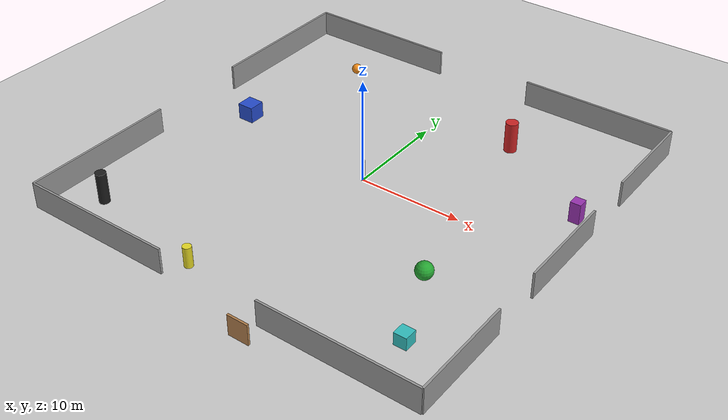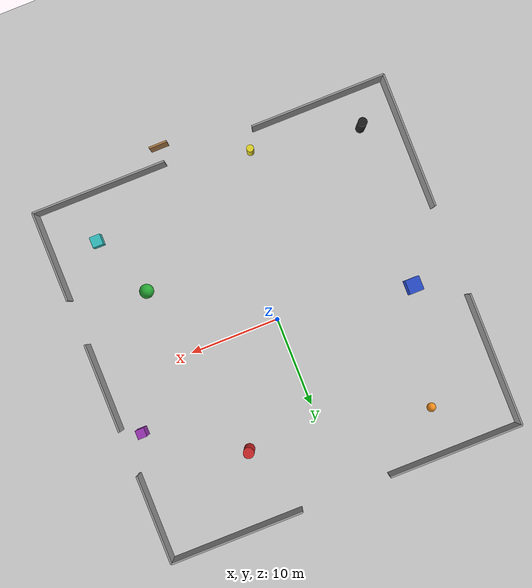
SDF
<?xml version="1.0" ?>
<sdf version="1.7">
  <world name="semi_open_space_world">

    <include><uri>model://sun</uri></include>
    <include><uri>model://ground_plane</uri></include>

    <!-- BỨC TƯỜNG BAO BỊ ĐỨT ĐOẠN (KHU VỰC 40x40m)    -->
    <model name="broken_walls">
      <static>true</static>
      <link name="walls">

        <!-- TƯỜNG BẮC (Y = 20): Thủng một mảng lớn 10m ở giữa -->
        <collision name="n_wall_1"><pose>-12.5 20 1.25 0 0 0</pose><geometry><box><size>15 0.2 2.5</size></box></geometry></collision>
        <visual name="n_wall_1_v"><pose>-12.5 20 1.25 0 0 0</pose><geometry><box><size>15 0.2 2.5</size></box></geometry><material><script><uri>file://media/materials/scripts/gazebo.material</uri><name>Gazebo/Grey</name></script></material></visual>

        <collision name="n_wall_2"><pose>12.5 20 1.25 0 0 0</pose><geometry><box><size>15 0.2 2.5</size></box></geometry></collision>
        <visual name="n_wall_2_v"><pose>12.5 20 1.25 0 0 0</pose><geometry><box><size>15 0.2 2.5</size></box></geometry><material><script><uri>file://media/materials/scripts/gazebo.material</uri><name>Gazebo/Grey</name></script></material></visual>

        <!-- TƯỜNG NAM (Y = -20): Thủng một mảng 10m ở giữa -->
        <collision name="s_wall_1"><pose>-12.5 -20 1.25 0 0 0</pose><geometry><box><size>15 0.2 2.5</size></box></geometry></collision>
        <visual name="s_wall_1_v"><pose>-12.5 -20 1.25 0 0 0</pose><geometry><box><size>15 0.2 2.5</size></box></geometry><material><script><uri>file://media/materials/scripts/gazebo.material</uri><name>Gazebo/Grey</name></script></material></visual>

        <collision name="s_wall_2"><pose>12.5 -20 1.25 0 0 0</pose><geometry><box><size>15 0.2 2.5</size></box></geometry></collision>
        <visual name="s_wall_2_v"><pose>12.5 -20 1.25 0 0 0</pose><geometry><box><size>15 0.2 2.5</size></box></geometry><material><script><uri>file://media/materials/scripts/gazebo.material</uri><name>Gazebo/Grey</name></script></material></visual>

        <!-- TƯỜNG ĐÔNG (X = 20): Bị xé làm 3 đoạn (2 chỗ hổng) -->
        <collision name="e_wall_1"><pose>20 15 1.25 0 0 0</pose><geometry><box><size>0.2 10 2.5</size></box></geometry></collision>
        <visual name="e_wall_1_v"><pose>20 15 1.25 0 0 0</pose><geometry><box><size>0.2 10 2.5</size></box></geometry><material><script><uri>file://media/materials/scripts/gazebo.material</uri><name>Gazebo/Grey</name></script></material></visual>

        <collision name="e_wall_2"><pose>20 0 1.25 0 0 0</pose><geometry><box><size>0.2 10 2.5</size></box></geometry></collision>
        <visual name="e_wall_2_v"><pose>20 0 1.25 0 0 0</pose><geometry><box><size>0.2 10 2.5</size></box></geometry><material><script><uri>file://media/materials/scripts/gazebo.material</uri><name>Gazebo/Grey</name></script></material></visual>

        <collision name="e_wall_3"><pose>20 -15 1.25 0 0 0</pose><geometry><box><size>0.2 10 2.5</size></box></geometry></collision>
        <visual name="e_wall_3_v"><pose>20 -15 1.25 0 0 0</pose><geometry><box><size>0.2 10 2.5</size></box></geometry><material><script><uri>file://media/materials/scripts/gazebo.material</uri><name>Gazebo/Grey</name></script></material></visual>

        <!-- TƯỜNG TÂY (X = -20): Thủng một lỗ khổng lồ 10m ở giữa -->
        <collision name="w_wall_1"><pose>-20 12.5 1.25 0 0 0</pose><geometry><box><size>0.2 15 2.5</size></box></geometry></collision>
        <visual name="w_wall_1_v"><pose>-20 12.5 1.25 0 0 0</pose><geometry><box><size>0.2 15 2.5</size></box></geometry><material><script><uri>file://media/materials/scripts/gazebo.material</uri><name>Gazebo/Grey</name></script></material></visual>

        <collision name="w_wall_2"><pose>-20 -12.5 1.25 0 0 0</pose><geometry><box><size>0.2 15 2.5</size></box></geometry></collision>
        <visual name="w_wall_2_v"><pose>-20 -12.5 1.25 0 0 0</pose><geometry><box><size>0.2 15 2.5</size></box></geometry><material><script><uri>file://media/materials/scripts/gazebo.material</uri><name>Gazebo/Grey</name></script></material></visual>
      </link>
    </model>

    <!-- ĐẶC TRƯNG RẢI RÁC (10 VẬT THỂ NHIỀU KÍCH CỠ)   -->
    <!-- Nằm rải rác bên trong và lấp ló ở khe hở      -->
    <model name="scattered_objects">
      <static>true</static>
      <link name="objects">

        <!-- Vật 1: Khối trụ đỏ lớn -->
        <visual name="obj1_v"><pose>8 12 1.5 0 0 0</pose><geometry><cylinder><radius>0.6</radius><length>3</length></cylinder></geometry><material><script><uri>file://media/materials/scripts/gazebo.material</uri><name>Gazebo/Red</name></script></material></visual>
        <collision name="obj1_c"><pose>8 12 1.5 0 0 0</pose><geometry><cylinder><radius>0.6</radius><length>3</length></cylinder></geometry></collision>

        <!-- Vật 2: Hộp xanh dương nằm gần khe hở Tây -->
        <visual name="obj2_v"><pose>-15 2 0.8 0 0 0</pose><geometry><box><size>1.6 1.6 1.6</size></box></geometry><material><script><uri>file://media/materials/scripts/gazebo.material</uri><name>Gazebo/Blue</name></script></material></visual>
        <collision name="obj2_c"><pose>-15 2 0.8 0 0 0</pose><geometry><box><size>1.6 1.6 1.6</size></box></geometry></collision>

        <!-- Vật 3: Khối cầu xanh lá cây -->
        <visual name="obj3_v"><pose>12 -8 0.8 0 0 0</pose><geometry><sphere><radius>0.8</radius></sphere></geometry><material><script><uri>file://media/materials/scripts/gazebo.material</uri><name>Gazebo/Green</name></script></material></visual>
        <collision name="obj3_c"><pose>12 -8 0.8 0 0 0</pose><geometry><sphere><radius>0.8</radius></sphere></geometry></collision>

        <!-- Vật 4: Trụ vàng nằm ở rìa hở phía Nam -->
        <visual name="obj4_v"><pose>-4 -18 1.0 0 0 0</pose><geometry><cylinder><radius>0.4</radius><length>2</length></cylinder></geometry><material><script><uri>file://media/materials/scripts/gazebo.material</uri><name>Gazebo/Yellow</name></script></material></visual>
        <collision name="obj4_c"><pose>-4 -18 1.0 0 0 0</pose><geometry><cylinder><radius>0.4</radius><length>2</length></cylinder></geometry></collision>

        <!-- Vật 5: Hộp tím nằm sát tường Đông -->
        <visual name="obj5_v"><pose>18 6 1.0 0 0 0</pose><geometry><box><size>1.0 1.0 2.0</size></box></geometry><material><script><uri>file://media/materials/scripts/gazebo.material</uri><name>Gazebo/Purple</name></script></material></visual>
        <collision name="obj5_c"><pose>18 6 1.0 0 0 0</pose><geometry><box><size>1.0 1.0 2.0</size></box></geometry></collision>

        <!-- Vật 6: Cầu cam nằm ở góc Tây Bắc -->
        <visual name="obj6_v"><pose>-12 15 0.5 0 0 0</pose><geometry><sphere><radius>0.5</radius></sphere></geometry><material><script><uri>file://media/materials/scripts/gazebo.material</uri><name>Gazebo/Orange</name></script></material></visual>
        <collision name="obj6_c"><pose>-12 15 0.5 0 0 0</pose><geometry><sphere><radius>0.5</radius></sphere></geometry></collision>

        <!-- Vật 7: Cột trắng trơ trọi giữa tâm map -->
        <visual name="obj7_v"><pose>0 0 1.0 0 0 0</pose><geometry><cylinder><radius>0.2</radius><length>2</length></cylinder></geometry><material><script><uri>file://media/materials/scripts/gazebo.material</uri><name>Gazebo/White</name></script></material></visual>
        <collision name="obj7_c"><pose>0 0 1.0 0 0 0</pose><geometry><cylinder><radius>0.2</radius><length>2</length></cylinder></geometry></collision>

        <!-- Vật 8: Cửa gỗ nằm ngoài rìa tường Nam (Lấp ló ngoài khe hở) -->
        <visual name="obj8_v"><pose>5 -22 1.0 0 0 0</pose><geometry><box><size>2.0 0.2 2.0</size></box></geometry><material><script><uri>file://media/materials/scripts/gazebo.material</uri><name>Gazebo/Wood</name></script></material></visual>
        <collision name="obj8_c"><pose>5 -22 1.0 0 0 0</pose><geometry><box><size>2.0 0.2 2.0</size></box></geometry></collision>

        <!-- Vật 9: Cột đen ở góc Tây Nam -->
        <visual name="obj9_v"><pose>-16 -16 1.5 0 0 0</pose><geometry><cylinder><radius>0.5</radius><length>3.0</length></cylinder></geometry><material><script><uri>file://media/materials/scripts/gazebo.material</uri><name>Gazebo/Black</name></script></material></visual>
        <collision name="obj9_c"><pose>-16 -16 1.5 0 0 0</pose><geometry><cylinder><radius>0.5</radius><length>3.0</length></cylinder></geometry></collision>

        <!-- Vật 10: Hộp xanh lơ ở góc Đông Nam -->
        <visual name="obj10_v"><pose>15 -15 0.6 0 0 0</pose><geometry><box><size>1.2 1.2 1.2</size></box></geometry><material><script><uri>file://media/materials/scripts/gazebo.material</uri><name>Gazebo/Turquoise</name></script></material></visual>
        <collision name="obj10_c"><pose>15 -15 0.6 0 0 0</pose><geometry><box><size>1.2 1.2 1.2</size></box></geometry></collision>

      </link>
    </model>

  </world>
</sdf>
